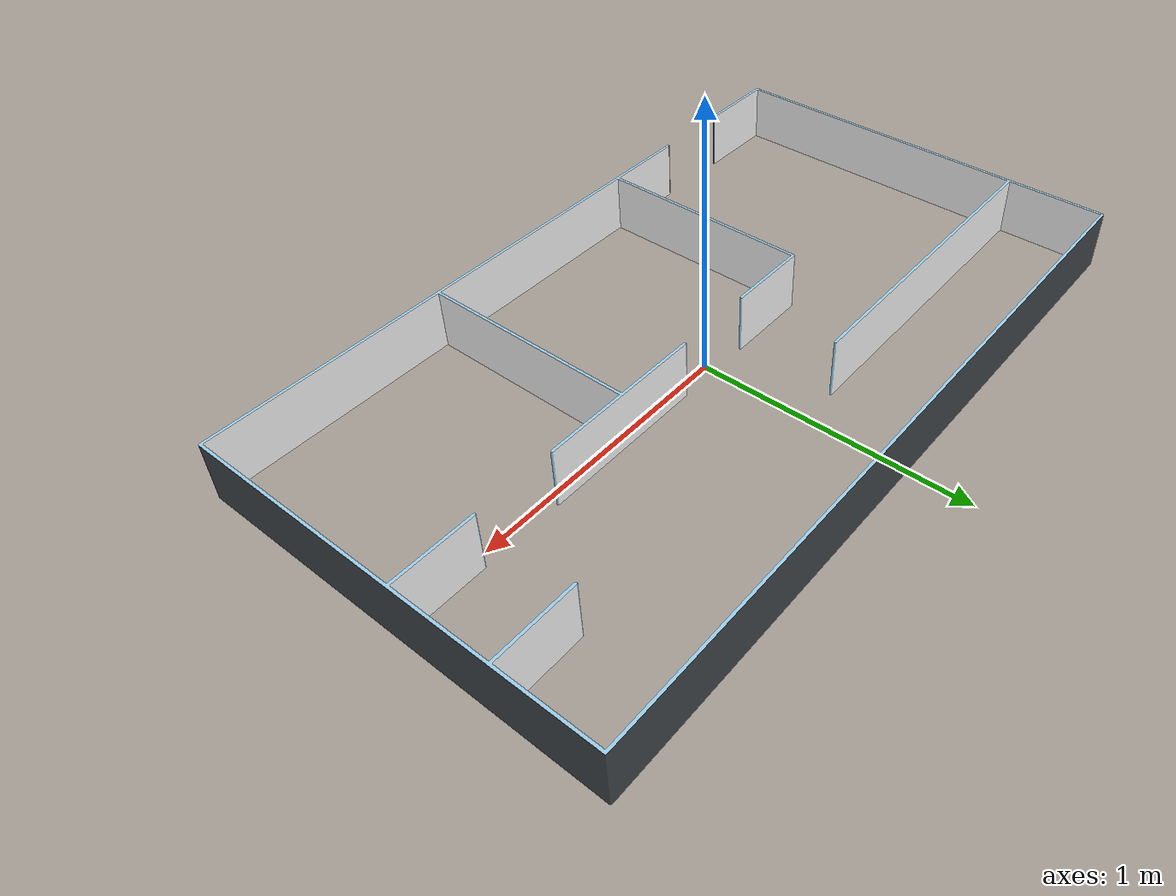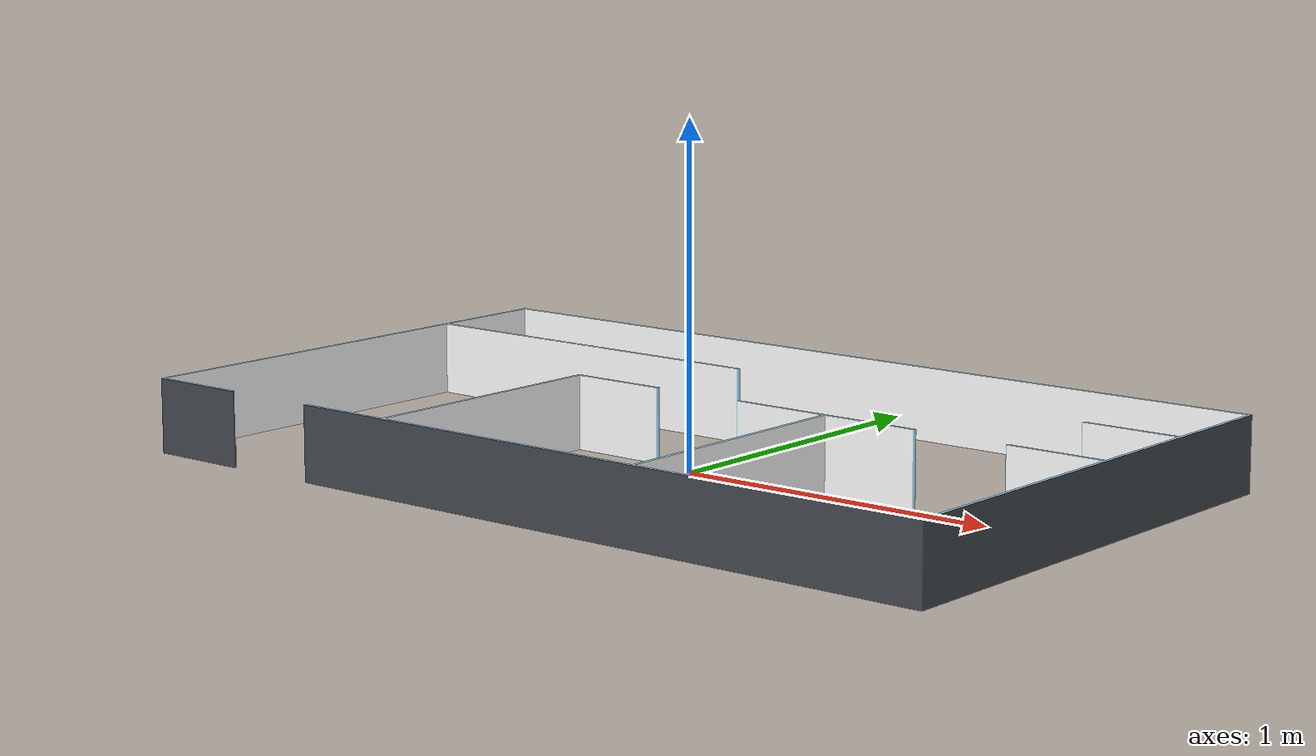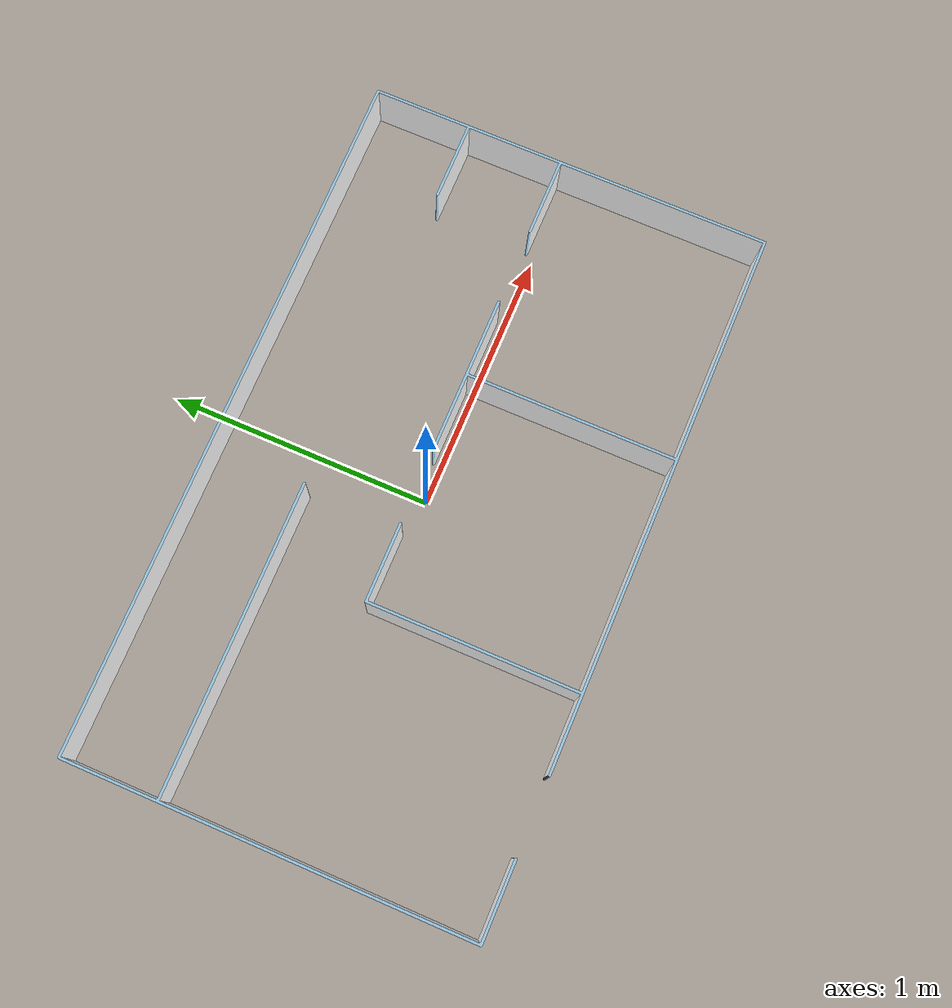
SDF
<?xml version="1.0" ?>
<sdf version="1.5">
  <model name="tortoisebot_warehouse">
    <static>true</static>
    <pose>0 0 0 0 0 0</pose>
    <link name="tortoisebot_walls">
      <inertial>
        <mass>5</mass>
        <inertia>
          <ixx>1.0</ixx>
          <ixy>0.0</ixy>
          <iyy>1.0</iyy>
          <ixz>0.0</ixz>
          <iyz>0.0</iyz>
          <izz>1.0</izz>
        </inertia>
        <pose>0 0 0 0 0 0</pose>
      </inertial>
      <collision name="collision">
        <geometry>
          <mesh>
            <uri>model://tortoisebot_warehouse/meshes/tortoisebot_warehouse_walls.dae</uri>
          </mesh>
        </geometry>
      </collision>
      <visual name="visual">
        <geometry>
          <mesh>
            <uri>model://tortoisebot_warehouse/meshes/tortoisebot_warehouse_walls.dae</uri>
          </mesh>
        </geometry>
      </visual>
    </link>
  </model>
</sdf>
